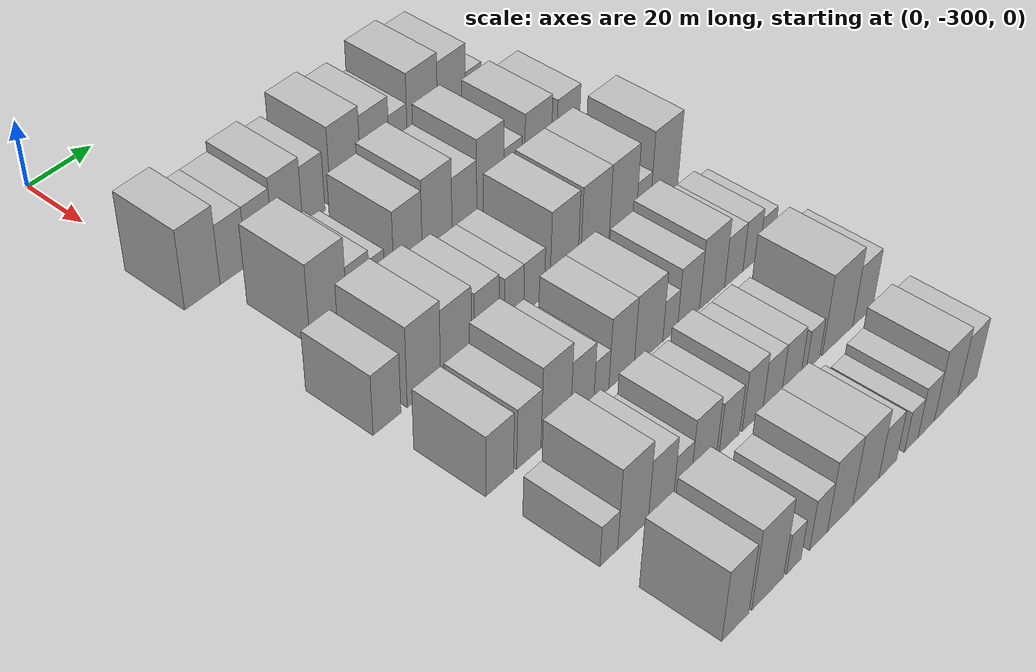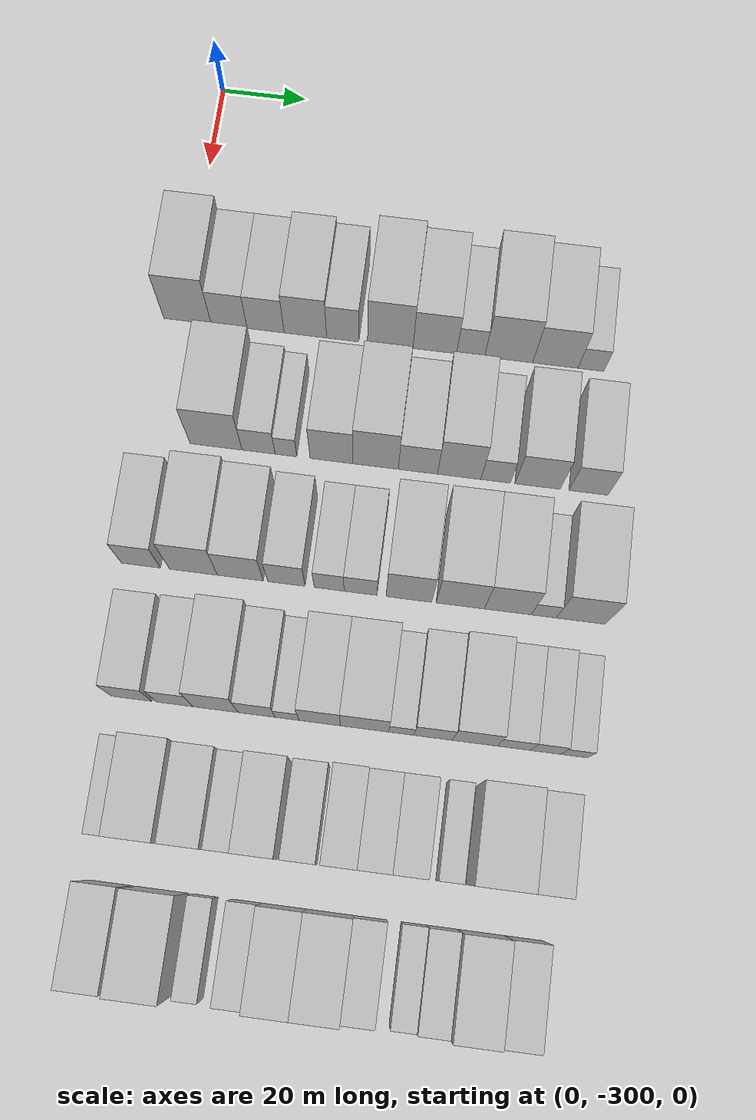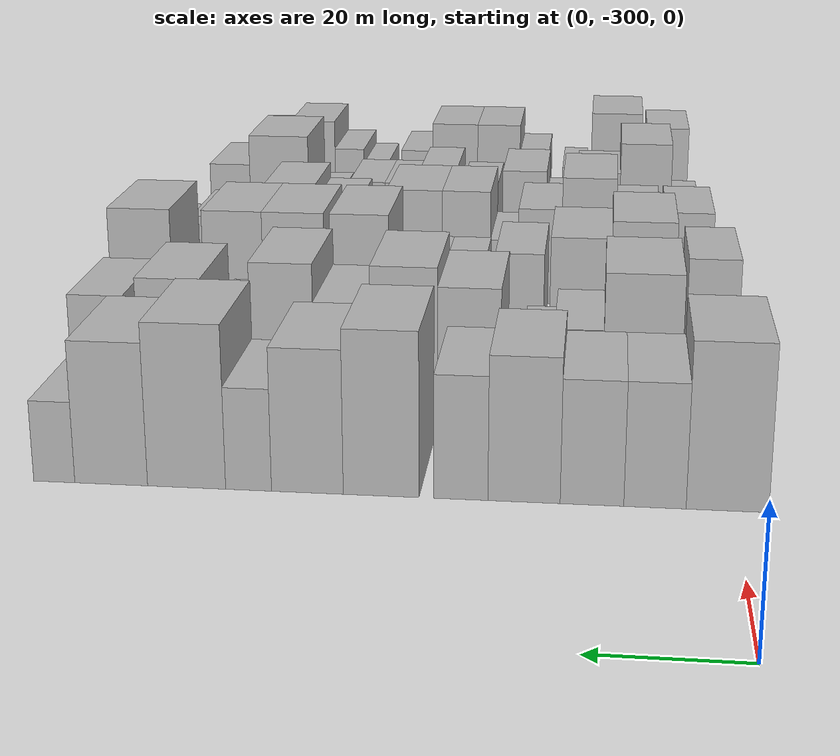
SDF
<sdf version="1.6">
 <world name="default">
  <model name="building_23">
   <static>1</static>
   <pose>50.0000 -298.9540 0 0.000000 0.000000 0.000000</pose>
   <link name="link">
    <pose>0 0 12.00 0 0 0</pose>
    <collision name="collision"><geometry><box><size>20.0000 10.9921 24.0000</size></box></geometry></collision>
    <visual name="visual">
     <cast_shadows>0</cast_shadows>
     <geometry><box><size>20.0000 10.9921 24.0000</size></box></geometry>
     <material>
      <script>
       <uri>model://HANNAS_wall/materials/scripts</uri>
       <uri>model://HANNAS_wall/materials/textures</uri>
       <name>vrc/HANNAS_wall</name>
      </script>
     </material>
    </visual>
   </link>
  </model>
  <model name="building_24">
   <static>1</static>
   <pose>50.0000 -289.2894 0 0.000000 0.000000 0.000000</pose>
   <link name="link">
    <pose>0 0 9.00 0 0 0</pose>
    <collision name="collision"><geometry><box><size>20.0000 8.3369 18.0000</size></box></geometry></collision>
    <visual name="visual">
     <cast_shadows>0</cast_shadows>
     <geometry><box><size>20.0000 8.3369 18.0000</size></box></geometry>
     <material>
      <script>
       <uri>model://HANNAS_wall/materials/scripts</uri>
       <uri>model://HANNAS_wall/materials/textures</uri>
       <name>vrc/HANNAS_wall</name>
      </script>
     </material>
    </visual>
   </link>
  </model>
  <model name="building_25">
   <static>1</static>
   <pose>50.0000 -280.8331 0 0.000000 0.000000 0.000000</pose>
   <link name="link">
    <pose>0 0 9.00 0 0 0</pose>
    <collision name="collision"><geometry><box><size>20.0000 8.5759 18.0000</size></box></geometry></collision>
    <visual name="visual">
     <cast_shadows>0</cast_shadows>
     <geometry><box><size>20.0000 8.5759 18.0000</size></box></geometry>
     <material>
      <script>
       <uri>model://HANNAS_wall/materials/scripts</uri>
       <uri>model://HANNAS_wall/materials/textures</uri>
       <name>vrc/HANNAS_wall</name>
      </script>
     </material>
    </visual>
   </link>
  </model>
  <model name="building_26">
   <static>1</static>
   <pose>50.0000 -271.6432 0 0.000000 0.000000 0.000000</pose>
   <link name="link">
    <pose>0 0 10.50 0 0 0</pose>
    <collision name="collision"><geometry><box><size>20.0000 9.8039 21.0000</size></box></geometry></collision>
    <visual name="visual">
     <cast_shadows>0</cast_shadows>
     <geometry><box><size>20.0000 9.8039 21.0000</size></box></geometry>
     <material>
      <script>
       <uri>model://HANNAS_wall/materials/scripts</uri>
       <uri>model://HANNAS_wall/materials/textures</uri>
       <name>vrc/HANNAS_wall</name>
      </script>
     </material>
    </visual>
   </link>
  </model>
  <model name="building_27">
   <static>1</static>
   <pose>50.0000 -263.0269 0 0.000000 0.000000 0.000000</pose>
   <link name="link">
    <pose>0 0 9.00 0 0 0</pose>
    <collision name="collision"><geometry><box><size>20.0000 7.4286 18.0000</size></box></geometry></collision>
    <visual name="visual">
     <cast_shadows>0</cast_shadows>
     <geometry><box><size>20.0000 7.4286 18.0000</size></box></geometry>
     <material>
      <script>
       <uri>model://HANNAS_wall/materials/scripts</uri>
       <uri>model://HANNAS_wall/materials/textures</uri>
       <name>vrc/HANNAS_wall</name>
      </script>
     </material>
    </visual>
   </link>
  </model>
  <model name="building_28">
   <static>1</static>
   <pose>50.0000 -252.0809 0 0.000000 0.000000 0.000000</pose>
   <link name="link">
    <pose>0 0 12.00 0 0 0</pose>
    <collision name="collision"><geometry><box><size>20.0000 10.4635 24.0000</size></box></geometry></collision>
    <visual name="visual">
     <cast_shadows>0</cast_shadows>
     <geometry><box><size>20.0000 10.4635 24.0000</size></box></geometry>
     <material>
      <script>
       <uri>model://HANNAS_wall/materials/scripts</uri>
       <uri>model://HANNAS_wall/materials/textures</uri>
       <name>vrc/HANNAS_wall</name>
      </script>
     </material>
    </visual>
   </link>
  </model>
  <model name="building_29">
   <static>1</static>
   <pose>50.0000 -241.8548 0 0.000000 0.000000 0.000000</pose>
   <link name="link">
    <pose>0 0 10.50 0 0 0</pose>
    <collision name="collision"><geometry><box><size>20.0000 9.9885 21.0000</size></box></geometry></collision>
    <visual name="visual">
     <cast_shadows>0</cast_shadows>
     <geometry><box><size>20.0000 9.9885 21.0000</size></box></geometry>
     <material>
      <script>
       <uri>model://HANNAS_wall/materials/scripts</uri>
       <uri>model://HANNAS_wall/materials/textures</uri>
       <name>vrc/HANNAS_wall</name>
      </script>
     </material>
    </visual>
   </link>
  </model>
  <model name="building_30">
   <static>1</static>
   <pose>50.0000 -233.6473 0 0.000000 0.000000 0.000000</pose>
   <link name="link">
    <pose>0 0 7.50 0 0 0</pose>
    <collision name="collision"><geometry><box><size>20.0000 6.4266 15.0000</size></box></geometry></collision>
    <visual name="visual">
     <cast_shadows>0</cast_shadows>
     <geometry><box><size>20.0000 6.4266 15.0000</size></box></geometry>
     <material>
      <script>
       <uri>model://HANNAS_wall/materials/scripts</uri>
       <uri>model://HANNAS_wall/materials/textures</uri>
       <name>vrc/HANNAS_wall</name>
      </script>
     </material>
    </visual>
   </link>
  </model>
  <model name="building_31">
   <static>1</static>
   <pose>50.0000 -224.9230 0 0.000000 0.000000 0.000000</pose>
   <link name="link">
    <pose>0 0 12.00 0 0 0</pose>
    <collision name="collision"><geometry><box><size>20.0000 11.0220 24.0000</size></box></geometry></collision>
    <visual name="visual">
     <cast_shadows>0</cast_shadows>
     <geometry><box><size>20.0000 11.0220 24.0000</size></box></geometry>
     <material>
      <script>
       <uri>model://HANNAS_wall/materials/scripts</uri>
       <uri>model://HANNAS_wall/materials/textures</uri>
       <name>vrc/HANNAS_wall</name>
      </script>
     </material>
    </visual>
   </link>
  </model>
  <model name="building_32">
   <static>1</static>
   <pose>50.0000 -214.2263 0 0.000000 0.000000 0.000000</pose>
   <link name="link">
    <pose>0 0 10.50 0 0 0</pose>
    <collision name="collision"><geometry><box><size>20.0000 10.3713 21.0000</size></box></geometry></collision>
    <visual name="visual">
     <cast_shadows>0</cast_shadows>
     <geometry><box><size>20.0000 10.3713 21.0000</size></box></geometry>
     <material>
      <script>
       <uri>model://HANNAS_wall/materials/scripts</uri>
       <uri>model://HANNAS_wall/materials/textures</uri>
       <name>vrc/HANNAS_wall</name>
      </script>
     </material>
    </visual>
   </link>
  </model>
  <model name="building_33">
   <static>1</static>
   <pose>50.0000 -206.0952 0 0.000000 0.000000 0.000000</pose>
   <link name="link">
    <pose>0 0 6.00 0 0 0</pose>
    <collision name="collision"><geometry><box><size>20.0000 5.8910 12.0000</size></box></geometry></collision>
    <visual name="visual">
     <cast_shadows>0</cast_shadows>
     <geometry><box><size>20.0000 5.8910 12.0000</size></box></geometry>
     <material>
      <script>
       <uri>model://HANNAS_wall/materials/scripts</uri>
       <uri>model://HANNAS_wall/materials/textures</uri>
       <name>vrc/HANNAS_wall</name>
      </script>
     </material>
    </visual>
   </link>
  </model>
  <model name="building_136">
   <static>1</static>
   <pose>79.0000 -287.8051 0 0.000000 0.000000 0.000000</pose>
   <link name="link">
    <pose>0 0 12.00 0 0 0</pose>
    <collision name="collision"><geometry><box><size>20.0000 11.7694 24.0000</size></box></geometry></collision>
    <visual name="visual">
     <cast_shadows>0</cast_shadows>
     <geometry><box><size>20.0000 11.7694 24.0000</size></box></geometry>
     <material>
      <script>
       <uri>model://HANNAS_wall/materials/scripts</uri>
       <uri>model://HANNAS_wall/materials/textures</uri>
       <name>vrc/HANNAS_wall</name>
      </script>
     </material>
    </visual>
   </link>
  </model>
  <model name="building_137">
   <static>1</static>
   <pose>79.0000 -278.1795 0 0.000000 0.000000 0.000000</pose>
   <link name="link">
    <pose>0 0 7.50 0 0 0</pose>
    <collision name="collision"><geometry><box><size>20.0000 7.4819 15.0000</size></box></geometry></collision>
    <visual name="visual">
     <cast_shadows>0</cast_shadows>
     <geometry><box><size>20.0000 7.4819 15.0000</size></box></geometry>
     <material>
      <script>
       <uri>model://HANNAS_wall/materials/scripts</uri>
       <uri>model://HANNAS_wall/materials/textures</uri>
       <name>vrc/HANNAS_wall</name>
      </script>
     </material>
    </visual>
   </link>
  </model>
  <model name="building_138">
   <static>1</static>
   <pose>79.0000 -271.9915 0 0.000000 0.000000 0.000000</pose>
   <link name="link">
    <pose>0 0 6.00 0 0 0</pose>
    <collision name="collision"><geometry><box><size>20.0000 4.8941 12.0000</size></box></geometry></collision>
    <visual name="visual">
     <cast_shadows>0</cast_shadows>
     <geometry><box><size>20.0000 4.8941 12.0000</size></box></geometry>
     <material>
      <script>
       <uri>model://HANNAS_wall/materials/scripts</uri>
       <uri>model://HANNAS_wall/materials/textures</uri>
       <name>vrc/HANNAS_wall</name>
      </script>
     </material>
    </visual>
   </link>
  </model>
  <model name="building_139">
   <static>1</static>
   <pose>79.0000 -261.7283 0 0.000000 0.000000 0.000000</pose>
   <link name="link">
    <pose>0 0 10.50 0 0 0</pose>
    <collision name="collision"><geometry><box><size>20.0000 9.6323 21.0000</size></box></geometry></collision>
    <visual name="visual">
     <cast_shadows>0</cast_shadows>
     <geometry><box><size>20.0000 9.6323 21.0000</size></box></geometry>
     <material>
      <script>
       <uri>model://HANNAS_wall/materials/scripts</uri>
       <uri>model://HANNAS_wall/materials/textures</uri>
       <name>vrc/HANNAS_wall</name>
      </script>
     </material>
    </visual>
   </link>
  </model>
  <model name="building_140">
   <static>1</static>
   <pose>79.0000 -251.7952 0 0.000000 0.000000 0.000000</pose>
   <link name="link">
    <pose>0 0 12.00 0 0 0</pose>
    <collision name="collision"><geometry><box><size>20.0000 10.2338 24.0000</size></box></geometry></collision>
    <visual name="visual">
     <cast_shadows>0</cast_shadows>
     <geometry><box><size>20.0000 10.2338 24.0000</size></box></geometry>
     <material>
      <script>
       <uri>model://HANNAS_wall/materials/scripts</uri>
       <uri>model://HANNAS_wall/materials/textures</uri>
       <name>vrc/HANNAS_wall</name>
      </script>
     </material>
    </visual>
   </link>
  </model>
  <model name="building_141">
   <static>1</static>
   <pose>79.0000 -242.3084 0 0.000000 0.000000 0.000000</pose>
   <link name="link">
    <pose>0 0 9.00 0 0 0</pose>
    <collision name="collision"><geometry><box><size>20.0000 8.7400 18.0000</size></box></geometry></collision>
    <visual name="visual">
     <cast_shadows>0</cast_shadows>
     <geometry><box><size>20.0000 8.7400 18.0000</size></box></geometry>
     <material>
      <script>
       <uri>model://HANNAS_wall/materials/scripts</uri>
       <uri>model://HANNAS_wall/materials/textures</uri>
       <name>vrc/HANNAS_wall</name>
      </script>
     </material>
    </visual>
   </link>
  </model>
  <model name="building_142">
   <static>1</static>
   <pose>79.0000 -233.0728 0 0.000000 0.000000 0.000000</pose>
   <link name="link">
    <pose>0 0 12.00 0 0 0</pose>
    <collision name="collision"><geometry><box><size>20.0000 9.7310 24.0000</size></box></geometry></collision>
    <visual name="visual">
     <cast_shadows>0</cast_shadows>
     <geometry><box><size>20.0000 9.7310 24.0000</size></box></geometry>
     <material>
      <script>
       <uri>model://HANNAS_wall/materials/scripts</uri>
       <uri>model://HANNAS_wall/materials/textures</uri>
       <name>vrc/HANNAS_wall</name>
      </script>
     </material>
    </visual>
   </link>
  </model>
  <model name="building_143">
   <static>1</static>
   <pose>79.0000 -224.8968 0 0.000000 0.000000 0.000000</pose>
   <link name="link">
    <pose>0 0 7.50 0 0 0</pose>
    <collision name="collision"><geometry><box><size>20.0000 6.6211 15.0000</size></box></geometry></collision>
    <visual name="visual">
     <cast_shadows>0</cast_shadows>
     <geometry><box><size>20.0000 6.6211 15.0000</size></box></geometry>
     <material>
      <script>
       <uri>model://HANNAS_wall/materials/scripts</uri>
       <uri>model://HANNAS_wall/materials/textures</uri>
       <name>vrc/HANNAS_wall</name>
      </script>
     </material>
    </visual>
   </link>
  </model>
  <model name="building_144">
   <static>1</static>
   <pose>79.0000 -215.5417 0 0.000000 0.000000 0.000000</pose>
   <link name="link">
    <pose>0 0 10.50 0 0 0</pose>
    <collision name="collision"><geometry><box><size>20.0000 10.0890 21.0000</size></box></geometry></collision>
    <visual name="visual">
     <cast_shadows>0</cast_shadows>
     <geometry><box><size>20.0000 10.0890 21.0000</size></box></geometry>
     <material>
      <script>
       <uri>model://HANNAS_wall/materials/scripts</uri>
       <uri>model://HANNAS_wall/materials/textures</uri>
       <name>vrc/HANNAS_wall</name>
      </script>
     </material>
    </visual>
   </link>
  </model>
  <model name="building_145">
   <static>1</static>
   <pose>79.0000 -204.1486 0 0.000000 0.000000 0.000000</pose>
   <link name="link">
    <pose>0 0 9.00 0 0 0</pose>
    <collision name="collision"><geometry><box><size>20.0000 8.6974 18.0000</size></box></geometry></collision>
    <visual name="visual">
     <cast_shadows>0</cast_shadows>
     <geometry><box><size>20.0000 8.6974 18.0000</size></box></geometry>
     <material>
      <script>
       <uri>model://HANNAS_wall/materials/scripts</uri>
       <uri>model://HANNAS_wall/materials/textures</uri>
       <name>vrc/HANNAS_wall</name>
      </script>
     </material>
    </visual>
   </link>
  </model>
  <model name="building_246">
   <static>1</static>
   <pose>108.0000 -299.9134 0 0.000000 0.000000 0.000000</pose>
   <link name="link">
    <pose>0 0 9.00 0 0 0</pose>
    <collision name="collision"><geometry><box><size>20.0000 8.6433 18.0000</size></box></geometry></collision>
    <visual name="visual">
     <cast_shadows>0</cast_shadows>
     <geometry><box><size>20.0000 8.6433 18.0000</size></box></geometry>
     <material>
      <script>
       <uri>model://HANNAS_wall/materials/scripts</uri>
       <uri>model://HANNAS_wall/materials/textures</uri>
       <name>vrc/HANNAS_wall</name>
      </script>
     </material>
    </visual>
   </link>
  </model>
  <model name="building_247">
   <static>1</static>
   <pose>108.0000 -288.2678 0 0.000000 0.000000 0.000000</pose>
   <link name="link">
    <pose>0 0 12.00 0 0 0</pose>
    <collision name="collision"><geometry><box><size>20.0000 10.6478 24.0000</size></box></geometry></collision>
    <visual name="visual">
     <cast_shadows>0</cast_shadows>
     <geometry><box><size>20.0000 10.6478 24.0000</size></box></geometry>
     <material>
      <script>
       <uri>model://HANNAS_wall/materials/scripts</uri>
       <uri>model://HANNAS_wall/materials/textures</uri>
       <name>vrc/HANNAS_wall</name>
      </script>
     </material>
    </visual>
   </link>
  </model>
  <model name="building_248">
   <static>1</static>
   <pose>108.0000 -277.9023 0 0.000000 0.000000 0.000000</pose>
   <link name="link">
    <pose>0 0 10.50 0 0 0</pose>
    <collision name="collision"><geometry><box><size>20.0000 10.0833 21.0000</size></box></geometry></collision>
    <visual name="visual">
     <cast_shadows>0</cast_shadows>
     <geometry><box><size>20.0000 10.0833 21.0000</size></box></geometry>
     <material>
      <script>
       <uri>model://HANNAS_wall/materials/scripts</uri>
       <uri>model://HANNAS_wall/materials/textures</uri>
       <name>vrc/HANNAS_wall</name>
      </script>
     </material>
    </visual>
   </link>
  </model>
  <model name="building_249">
   <static>1</static>
   <pose>108.0000 -267.7520 0 0.000000 0.000000 0.000000</pose>
   <link name="link">
    <pose>0 0 9.00 0 0 0</pose>
    <collision name="collision"><geometry><box><size>20.0000 8.2174 18.0000</size></box></geometry></collision>
    <visual name="visual">
     <cast_shadows>0</cast_shadows>
     <geometry><box><size>20.0000 8.2174 18.0000</size></box></geometry>
     <material>
      <script>
       <uri>model://HANNAS_wall/materials/scripts</uri>
       <uri>model://HANNAS_wall/materials/textures</uri>
       <name>vrc/HANNAS_wall</name>
      </script>
     </material>
    </visual>
   </link>
  </model>
  <model name="building_250">
   <static>1</static>
   <pose>108.0000 -258.3601 0 0.000000 0.000000 0.000000</pose>
   <link name="link">
    <pose>0 0 7.50 0 0 0</pose>
    <collision name="collision"><geometry><box><size>20.0000 6.5665 15.0000</size></box></geometry></collision>
    <visual name="visual">
     <cast_shadows>0</cast_shadows>
     <geometry><box><size>20.0000 6.5665 15.0000</size></box></geometry>
     <material>
      <script>
       <uri>model://HANNAS_wall/materials/scripts</uri>
       <uri>model://HANNAS_wall/materials/textures</uri>
       <name>vrc/HANNAS_wall</name>
      </script>
     </material>
    </visual>
   </link>
  </model>
  <model name="building_251">
   <static>1</static>
   <pose>108.0000 -251.4636 0 0.000000 0.000000 0.000000</pose>
   <link name="link">
    <pose>0 0 7.50 0 0 0</pose>
    <collision name="collision"><geometry><box><size>20.0000 7.2264 15.0000</size></box></geometry></collision>
    <visual name="visual">
     <cast_shadows>0</cast_shadows>
     <geometry><box><size>20.0000 7.2264 15.0000</size></box></geometry>
     <material>
      <script>
       <uri>model://HANNAS_wall/materials/scripts</uri>
       <uri>model://HANNAS_wall/materials/textures</uri>
       <name>vrc/HANNAS_wall</name>
      </script>
     </material>
    </visual>
   </link>
  </model>
  <model name="building_252">
   <static>1</static>
   <pose>108.0000 -240.8677 0 0.000000 0.000000 0.000000</pose>
   <link name="link">
    <pose>0 0 12.00 0 0 0</pose>
    <collision name="collision"><geometry><box><size>20.0000 9.9655 24.0000</size></box></geometry></collision>
    <visual name="visual">
     <cast_shadows>0</cast_shadows>
     <geometry><box><size>20.0000 9.9655 24.0000</size></box></geometry>
     <material>
      <script>
       <uri>model://HANNAS_wall/materials/scripts</uri>
       <uri>model://HANNAS_wall/materials/textures</uri>
       <name>vrc/HANNAS_wall</name>
      </script>
     </material>
    </visual>
   </link>
  </model>
  <model name="building_253">
   <static>1</static>
   <pose>108.0000 -229.6388 0 0.000000 0.000000 0.000000</pose>
   <link name="link">
    <pose>0 0 12.00 0 0 0</pose>
    <collision name="collision"><geometry><box><size>20.0000 10.4922 24.0000</size></box></geometry></collision>
    <visual name="visual">
     <cast_shadows>0</cast_shadows>
     <geometry><box><size>20.0000 10.4922 24.0000</size></box></geometry>
     <material>
      <script>
       <uri>model://HANNAS_wall/materials/scripts</uri>
       <uri>model://HANNAS_wall/materials/textures</uri>
       <name>vrc/HANNAS_wall</name>
      </script>
     </material>
    </visual>
   </link>
  </model>
  <model name="building_254">
   <static>1</static>
   <pose>108.0000 -219.2633 0 0.000000 0.000000 0.000000</pose>
   <link name="link">
    <pose>0 0 12.00 0 0 0</pose>
    <collision name="collision"><geometry><box><size>20.0000 10.2589 24.0000</size></box></geometry></collision>
    <visual name="visual">
     <cast_shadows>0</cast_shadows>
     <geometry><box><size>20.0000 10.2589 24.0000</size></box></geometry>
     <material>
      <script>
       <uri>model://HANNAS_wall/materials/scripts</uri>
       <uri>model://HANNAS_wall/materials/textures</uri>
       <name>vrc/HANNAS_wall</name>
      </script>
     </material>
    </visual>
   </link>
  </model>
  <model name="building_255">
   <static>1</static>
   <pose>108.0000 -211.4059 0 0.000000 0.000000 0.000000</pose>
   <link name="link">
    <pose>0 0 6.00 0 0 0</pose>
    <collision name="collision"><geometry><box><size>20.0000 5.4559 12.0000</size></box></geometry></collision>
    <visual name="visual">
     <cast_shadows>0</cast_shadows>
     <geometry><box><size>20.0000 5.4559 12.0000</size></box></geometry>
     <material>
      <script>
       <uri>model://HANNAS_wall/materials/scripts</uri>
       <uri>model://HANNAS_wall/materials/textures</uri>
       <name>vrc/HANNAS_wall</name>
      </script>
     </material>
    </visual>
   </link>
  </model>
  <model name="building_256">
   <static>1</static>
   <pose>108.0000 -203.3059 0 0.000000 0.000000 0.000000</pose>
   <link name="link">
    <pose>0 0 12.00 0 0 0</pose>
    <collision name="collision"><geometry><box><size>20.0000 10.7442 24.0000</size></box></geometry></collision>
    <visual name="visual">
     <cast_shadows>0</cast_shadows>
     <geometry><box><size>20.0000 10.7442 24.0000</size></box></geometry>
     <material>
      <script>
       <uri>model://HANNAS_wall/materials/scripts</uri>
       <uri>model://HANNAS_wall/materials/textures</uri>
       <name>vrc/HANNAS_wall</name>
      </script>
     </material>
    </visual>
   </link>
  </model>
  <model name="building_356">
   <static>1</static>
   <pose>137.0000 -296.9998 0 0.000000 0.000000 0.000000</pose>
   <link name="link">
    <pose>0 0 9.00 0 0 0</pose>
    <collision name="collision"><geometry><box><size>20.0000 8.7919 18.0000</size></box></geometry></collision>
    <visual name="visual">
     <cast_shadows>0</cast_shadows>
     <geometry><box><size>20.0000 8.7919 18.0000</size></box></geometry>
     <material>
      <script>
       <uri>model://HANNAS_wall/materials/scripts</uri>
       <uri>model://HANNAS_wall/materials/textures</uri>
       <name>vrc/HANNAS_wall</name>
      </script>
     </material>
    </visual>
   </link>
  </model>
  <model name="building_357">
   <static>1</static>
   <pose>137.0000 -287.6538 0 0.000000 0.000000 0.000000</pose>
   <link name="link">
    <pose>0 0 9.00 0 0 0</pose>
    <collision name="collision"><geometry><box><size>20.0000 7.9002 18.0000</size></box></geometry></collision>
    <visual name="visual">
     <cast_shadows>0</cast_shadows>
     <geometry><box><size>20.0000 7.9002 18.0000</size></box></geometry>
     <material>
      <script>
       <uri>model://HANNAS_wall/materials/scripts</uri>
       <uri>model://HANNAS_wall/materials/textures</uri>
       <name>vrc/HANNAS_wall</name>
      </script>
     </material>
    </visual>
   </link>
  </model>
  <model name="building_358">
   <static>1</static>
   <pose>137.0000 -278.8175 0 0.000000 0.000000 0.000000</pose>
   <link name="link">
    <pose>0 0 12.00 0 0 0</pose>
    <collision name="collision"><geometry><box><size>20.0000 9.7725 24.0000</size></box></geometry></collision>
    <visual name="visual">
     <cast_shadows>0</cast_shadows>
     <geometry><box><size>20.0000 9.7725 24.0000</size></box></geometry>
     <material>
      <script>
       <uri>model://HANNAS_wall/materials/scripts</uri>
       <uri>model://HANNAS_wall/materials/textures</uri>
       <name>vrc/HANNAS_wall</name>
      </script>
     </material>
    </visual>
   </link>
  </model>
  <model name="building_359">
   <static>1</static>
   <pose>137.0000 -269.9731 0 0.000000 0.000000 0.000000</pose>
   <link name="link">
    <pose>0 0 9.00 0 0 0</pose>
    <collision name="collision"><geometry><box><size>20.0000 7.9161 18.0000</size></box></geometry></collision>
    <visual name="visual">
     <cast_shadows>0</cast_shadows>
     <geometry><box><size>20.0000 7.9161 18.0000</size></box></geometry>
     <material>
      <script>
       <uri>model://HANNAS_wall/materials/scripts</uri>
       <uri>model://HANNAS_wall/materials/textures</uri>
       <name>vrc/HANNAS_wall</name>
      </script>
     </material>
    </visual>
   </link>
  </model>
  <model name="building_360">
   <static>1</static>
   <pose>137.0000 -263.4494 0 0.000000 0.000000 0.000000</pose>
   <link name="link">
    <pose>0 0 6.00 0 0 0</pose>
    <collision name="collision"><geometry><box><size>20.0000 5.1313 12.0000</size></box></geometry></collision>
    <visual name="visual">
     <cast_shadows>0</cast_shadows>
     <geometry><box><size>20.0000 5.1313 12.0000</size></box></geometry>
     <material>
      <script>
       <uri>model://HANNAS_wall/materials/scripts</uri>
       <uri>model://HANNAS_wall/materials/textures</uri>
       <name>vrc/HANNAS_wall</name>
      </script>
     </material>
    </visual>
   </link>
  </model>
  <model name="building_361">
   <static>1</static>
   <pose>137.0000 -256.4509 0 0.000000 0.000000 0.000000</pose>
   <link name="link">
    <pose>0 0 10.50 0 0 0</pose>
    <collision name="collision"><geometry><box><size>20.0000 8.8657 21.0000</size></box></geometry></collision>
    <visual name="visual">
     <cast_shadows>0</cast_shadows>
     <geometry><box><size>20.0000 8.8657 21.0000</size></box></geometry>
     <material>
      <script>
       <uri>model://HANNAS_wall/materials/scripts</uri>
       <uri>model://HANNAS_wall/materials/textures</uri>
       <name>vrc/HANNAS_wall</name>
      </script>
     </material>
    </visual>
   </link>
  </model>
  <model name="building_362">
   <static>1</static>
   <pose>137.0000 -246.8710 0 0.000000 0.000000 0.000000</pose>
   <link name="link">
    <pose>0 0 10.50 0 0 0</pose>
    <collision name="collision"><geometry><box><size>20.0000 10.2941 21.0000</size></box></geometry></collision>
    <visual name="visual">
     <cast_shadows>0</cast_shadows>
     <geometry><box><size>20.0000 10.2941 21.0000</size></box></geometry>
     <material>
      <script>
       <uri>model://HANNAS_wall/materials/scripts</uri>
       <uri>model://HANNAS_wall/materials/textures</uri>
       <name>vrc/HANNAS_wall</name>
      </script>
     </material>
    </visual>
   </link>
  </model>
  <model name="building_363">
   <static>1</static>
   <pose>137.0000 -239.0305 0 0.000000 0.000000 0.000000</pose>
   <link name="link">
    <pose>0 0 6.00 0 0 0</pose>
    <collision name="collision"><geometry><box><size>20.0000 5.3869 12.0000</size></box></geometry></collision>
    <visual name="visual">
     <cast_shadows>0</cast_shadows>
     <geometry><box><size>20.0000 5.3869 12.0000</size></box></geometry>
     <material>
      <script>
       <uri>model://HANNAS_wall/materials/scripts</uri>
       <uri>model://HANNAS_wall/materials/textures</uri>
       <name>vrc/HANNAS_wall</name>
      </script>
     </material>
    </visual>
   </link>
  </model>
  <model name="building_364">
   <static>1</static>
   <pose>137.0000 -232.2501 0 0.000000 0.000000 0.000000</pose>
   <link name="link">
    <pose>0 0 9.00 0 0 0</pose>
    <collision name="collision"><geometry><box><size>20.0000 8.1737 18.0000</size></box></geometry></collision>
    <visual name="visual">
     <cast_shadows>0</cast_shadows>
     <geometry><box><size>20.0000 8.1737 18.0000</size></box></geometry>
     <material>
      <script>
       <uri>model://HANNAS_wall/materials/scripts</uri>
       <uri>model://HANNAS_wall/materials/textures</uri>
       <name>vrc/HANNAS_wall</name>
      </script>
     </material>
    </visual>
   </link>
  </model>
  <model name="building_365">
   <static>1</static>
   <pose>137.0000 -223.3957 0 0.000000 0.000000 0.000000</pose>
   <link name="link">
    <pose>0 0 10.50 0 0 0</pose>
    <collision name="collision"><geometry><box><size>20.0000 9.5351 21.0000</size></box></geometry></collision>
    <visual name="visual">
     <cast_shadows>0</cast_shadows>
     <geometry><box><size>20.0000 9.5351 21.0000</size></box></geometry>
     <material>
      <script>
       <uri>model://HANNAS_wall/materials/scripts</uri>
       <uri>model://HANNAS_wall/materials/textures</uri>
       <name>vrc/HANNAS_wall</name>
      </script>
     </material>
    </visual>
   </link>
  </model>
  <model name="building_366">
   <static>1</static>
   <pose>137.0000 -215.0769 0 0.000000 0.000000 0.000000</pose>
   <link name="link">
    <pose>0 0 7.50 0 0 0</pose>
    <collision name="collision"><geometry><box><size>20.0000 7.1026 15.0000</size></box></geometry></collision>
    <visual name="visual">
     <cast_shadows>0</cast_shadows>
     <geometry><box><size>20.0000 7.1026 15.0000</size></box></geometry>
     <material>
      <script>
       <uri>model://HANNAS_wall/materials/scripts</uri>
       <uri>model://HANNAS_wall/materials/textures</uri>
       <name>vrc/HANNAS_wall</name>
      </script>
     </material>
    </visual>
   </link>
  </model>
  <model name="building_367">
   <static>1</static>
   <pose>137.0000 -208.3216 0 0.000000 0.000000 0.000000</pose>
   <link name="link">
    <pose>0 0 7.50 0 0 0</pose>
    <collision name="collision"><geometry><box><size>20.0000 6.4079 15.0000</size></box></geometry></collision>
    <visual name="visual">
     <cast_shadows>0</cast_shadows>
     <geometry><box><size>20.0000 6.4079 15.0000</size></box></geometry>
     <material>
      <script>
       <uri>model://HANNAS_wall/materials/scripts</uri>
       <uri>model://HANNAS_wall/materials/textures</uri>
       <name>vrc/HANNAS_wall</name>
      </script>
     </material>
    </visual>
   </link>
  </model>
  <model name="building_368">
   <static>1</static>
   <pose>137.0000 -202.2452 0 0.000000 0.000000 0.000000</pose>
   <link name="link">
    <pose>0 0 6.00 0 0 0</pose>
    <collision name="collision"><geometry><box><size>20.0000 5.7450 12.0000</size></box></geometry></collision>
    <visual name="visual">
     <cast_shadows>0</cast_shadows>
     <geometry><box><size>20.0000 5.7450 12.0000</size></box></geometry>
     <material>
      <script>
       <uri>model://HANNAS_wall/materials/scripts</uri>
       <uri>model://HANNAS_wall/materials/textures</uri>
       <name>vrc/HANNAS_wall</name>
      </script>
     </material>
    </visual>
   </link>
  </model>
  <model name="building_474">
   <static>1</static>
   <pose>166.0000 -297.3881 0 0.000000 0.000000 0.000000</pose>
   <link name="link">
    <pose>0 0 6.00 0 0 0</pose>
    <collision name="collision"><geometry><box><size>20.0000 5.6850 12.0000</size></box></geometry></collision>
    <visual name="visual">
     <cast_shadows>0</cast_shadows>
     <geometry><box><size>20.0000 5.6850 12.0000</size></box></geometry>
     <material>
      <script>
       <uri>model://HANNAS_wall/materials/scripts</uri>
       <uri>model://HANNAS_wall/materials/textures</uri>
       <name>vrc/HANNAS_wall</name>
      </script>
     </material>
    </visual>
   </link>
  </model>
  <model name="building_475">
   <static>1</static>
   <pose>166.0000 -289.5441 0 0.000000 0.000000 0.000000</pose>
   <link name="link">
    <pose>0 0 12.00 0 0 0</pose>
    <collision name="collision"><geometry><box><size>20.0000 10.0030 24.0000</size></box></geometry></collision>
    <visual name="visual">
     <cast_shadows>0</cast_shadows>
     <geometry><box><size>20.0000 10.0030 24.0000</size></box></geometry>
     <material>
      <script>
       <uri>model://HANNAS_wall/materials/scripts</uri>
       <uri>model://HANNAS_wall/materials/textures</uri>
       <name>vrc/HANNAS_wall</name>
      </script>
     </material>
    </visual>
   </link>
  </model>
  <model name="building_476">
   <static>1</static>
   <pose>166.0000 -280.2774 0 0.000000 0.000000 0.000000</pose>
   <link name="link">
    <pose>0 0 9.00 0 0 0</pose>
    <collision name="collision"><geometry><box><size>20.0000 8.5303 18.0000</size></box></geometry></collision>
    <visual name="visual">
     <cast_shadows>0</cast_shadows>
     <geometry><box><size>20.0000 8.5303 18.0000</size></box></geometry>
     <material>
      <script>
       <uri>model://HANNAS_wall/materials/scripts</uri>
       <uri>model://HANNAS_wall/materials/textures</uri>
       <name>vrc/HANNAS_wall</name>
      </script>
     </material>
    </visual>
   </link>
  </model>
  <model name="building_477">
   <static>1</static>
   <pose>166.0000 -273.0329 0 0.000000 0.000000 0.000000</pose>
   <link name="link">
    <pose>0 0 6.00 0 0 0</pose>
    <collision name="collision"><geometry><box><size>20.0000 5.9587 12.0000</size></box></geometry></collision>
    <visual name="visual">
     <cast_shadows>0</cast_shadows>
     <geometry><box><size>20.0000 5.9587 12.0000</size></box></geometry>
     <material>
      <script>
       <uri>model://HANNAS_wall/materials/scripts</uri>
       <uri>model://HANNAS_wall/materials/textures</uri>
       <name>vrc/HANNAS_wall</name>
      </script>
     </material>
    </visual>
   </link>
  </model>
  <model name="building_478">
   <static>1</static>
   <pose>166.0000 -265.6677 0 0.000000 0.000000 0.000000</pose>
   <link name="link">
    <pose>0 0 9.00 0 0 0</pose>
    <collision name="collision"><geometry><box><size>20.0000 8.7718 18.0000</size></box></geometry></collision>
    <visual name="visual">
     <cast_shadows>0</cast_shadows>
     <geometry><box><size>20.0000 8.7718 18.0000</size></box></geometry>
     <material>
      <script>
       <uri>model://HANNAS_wall/materials/scripts</uri>
       <uri>model://HANNAS_wall/materials/textures</uri>
       <name>vrc/HANNAS_wall</name>
      </script>
     </material>
    </visual>
   </link>
  </model>
  <model name="building_479">
   <static>1</static>
   <pose>166.0000 -256.6809 0 0.000000 0.000000 0.000000</pose>
   <link name="link">
    <pose>0 0 7.50 0 0 0</pose>
    <collision name="collision"><geometry><box><size>20.0000 7.2018 15.0000</size></box></geometry></collision>
    <visual name="visual">
     <cast_shadows>0</cast_shadows>
     <geometry><box><size>20.0000 7.2018 15.0000</size></box></geometry>
     <material>
      <script>
       <uri>model://HANNAS_wall/materials/scripts</uri>
       <uri>model://HANNAS_wall/materials/textures</uri>
       <name>vrc/HANNAS_wall</name>
      </script>
     </material>
    </visual>
   </link>
  </model>
  <model name="building_480">
   <static>1</static>
   <pose>166.0000 -248.4094 0 0.000000 0.000000 0.000000</pose>
   <link name="link">
    <pose>0 0 9.00 0 0 0</pose>
    <collision name="collision"><geometry><box><size>20.0000 7.3412 18.0000</size></box></geometry></collision>
    <visual name="visual">
     <cast_shadows>0</cast_shadows>
     <geometry><box><size>20.0000 7.3412 18.0000</size></box></geometry>
     <material>
      <script>
       <uri>model://HANNAS_wall/materials/scripts</uri>
       <uri>model://HANNAS_wall/materials/textures</uri>
       <name>vrc/HANNAS_wall</name>
      </script>
     </material>
    </visual>
   </link>
  </model>
  <model name="building_481">
   <static>1</static>
   <pose>166.0000 -241.1809 0 0.000000 0.000000 0.000000</pose>
   <link name="link">
    <pose>0 0 7.50 0 0 0</pose>
    <collision name="collision"><geometry><box><size>20.0000 7.1157 15.0000</size></box></geometry></collision>
    <visual name="visual">
     <cast_shadows>0</cast_shadows>
     <geometry><box><size>20.0000 7.1157 15.0000</size></box></geometry>
     <material>
      <script>
       <uri>model://HANNAS_wall/materials/scripts</uri>
       <uri>model://HANNAS_wall/materials/textures</uri>
       <name>vrc/HANNAS_wall</name>
      </script>
     </material>
    </visual>
   </link>
  </model>
  <model name="building_482">
   <static>1</static>
   <pose>166.0000 -233.9866 0 0.000000 0.000000 0.000000</pose>
   <link name="link">
    <pose>0 0 7.50 0 0 0</pose>
    <collision name="collision"><geometry><box><size>20.0000 7.2728 15.0000</size></box></geometry></collision>
    <visual name="visual">
     <cast_shadows>0</cast_shadows>
     <geometry><box><size>20.0000 7.2728 15.0000</size></box></geometry>
     <material>
      <script>
       <uri>model://HANNAS_wall/materials/scripts</uri>
       <uri>model://HANNAS_wall/materials/textures</uri>
       <name>vrc/HANNAS_wall</name>
      </script>
     </material>
    </visual>
   </link>
  </model>
  <model name="building_483">
   <static>1</static>
   <pose>166.0000 -225.7183 0 0.000000 0.000000 0.000000</pose>
   <link name="link">
    <pose>0 0 6.00 0 0 0</pose>
    <collision name="collision"><geometry><box><size>20.0000 5.2639 12.0000</size></box></geometry></collision>
    <visual name="visual">
     <cast_shadows>0</cast_shadows>
     <geometry><box><size>20.0000 5.2639 12.0000</size></box></geometry>
     <material>
      <script>
       <uri>model://HANNAS_wall/materials/scripts</uri>
       <uri>model://HANNAS_wall/materials/textures</uri>
       <name>vrc/HANNAS_wall</name>
      </script>
     </material>
    </visual>
   </link>
  </model>
  <model name="building_484">
   <static>1</static>
   <pose>166.0000 -216.1042 0 0.000000 0.000000 0.000000</pose>
   <link name="link">
    <pose>0 0 12.00 0 0 0</pose>
    <collision name="collision"><geometry><box><size>20.0000 11.9643 24.0000</size></box></geometry></collision>
    <visual name="visual">
     <cast_shadows>0</cast_shadows>
     <geometry><box><size>20.0000 11.9643 24.0000</size></box></geometry>
     <material>
      <script>
       <uri>model://HANNAS_wall/materials/scripts</uri>
       <uri>model://HANNAS_wall/materials/textures</uri>
       <name>vrc/HANNAS_wall</name>
      </script>
     </material>
    </visual>
   </link>
  </model>
  <model name="building_485">
   <static>1</static>
   <pose>166.0000 -206.0633 0 0.000000 0.000000 0.000000</pose>
   <link name="link">
    <pose>0 0 9.00 0 0 0</pose>
    <collision name="collision"><geometry><box><size>20.0000 8.1175 18.0000</size></box></geometry></collision>
    <visual name="visual">
     <cast_shadows>0</cast_shadows>
     <geometry><box><size>20.0000 8.1175 18.0000</size></box></geometry>
     <material>
      <script>
       <uri>model://HANNAS_wall/materials/scripts</uri>
       <uri>model://HANNAS_wall/materials/textures</uri>
       <name>vrc/HANNAS_wall</name>
      </script>
     </material>
    </visual>
   </link>
  </model>
  <model name="building_593">
   <static>1</static>
   <pose>195.0000 -294.6291 0 0.000000 0.000000 0.000000</pose>
   <link name="link">
    <pose>0 0 10.50 0 0 0</pose>
    <collision name="collision"><geometry><box><size>20.0000 8.8433 21.0000</size></box></geometry></collision>
    <visual name="visual">
     <cast_shadows>0</cast_shadows>
     <geometry><box><size>20.0000 8.8433 21.0000</size></box></geometry>
     <material>
      <script>
       <uri>model://HANNAS_wall/materials/scripts</uri>
       <uri>model://HANNAS_wall/materials/textures</uri>
       <name>vrc/HANNAS_wall</name>
      </script>
     </material>
    </visual>
   </link>
  </model>
  <model name="building_594">
   <static>1</static>
   <pose>195.0000 -283.8546 0 0.000000 0.000000 0.000000</pose>
   <link name="link">
    <pose>0 0 12.00 0 0 0</pose>
    <collision name="collision"><geometry><box><size>20.0000 10.7057 24.0000</size></box></geometry></collision>
    <visual name="visual">
     <cast_shadows>0</cast_shadows>
     <geometry><box><size>20.0000 10.7057 24.0000</size></box></geometry>
     <material>
      <script>
       <uri>model://HANNAS_wall/materials/scripts</uri>
       <uri>model://HANNAS_wall/materials/textures</uri>
       <name>vrc/HANNAS_wall</name>
      </script>
     </material>
    </visual>
   </link>
  </model>
  <model name="building_595">
   <static>1</static>
   <pose>195.0000 -274.9612 0 0.000000 0.000000 0.000000</pose>
   <link name="link">
    <pose>0 0 6.00 0 0 0</pose>
    <collision name="collision"><geometry><box><size>20.0000 5.0810 12.0000</size></box></geometry></collision>
    <visual name="visual">
     <cast_shadows>0</cast_shadows>
     <geometry><box><size>20.0000 5.0810 12.0000</size></box></geometry>
     <material>
      <script>
       <uri>model://HANNAS_wall/materials/scripts</uri>
       <uri>model://HANNAS_wall/materials/textures</uri>
       <name>vrc/HANNAS_wall</name>
      </script>
     </material>
    </visual>
   </link>
  </model>
  <model name="building_596">
   <static>1</static>
   <pose>195.0000 -266.3131 0 0.000000 0.000000 0.000000</pose>
   <link name="link">
    <pose>0 0 7.50 0 0 0</pose>
    <collision name="collision"><geometry><box><size>20.0000 6.2152 15.0000</size></box></geometry></collision>
    <visual name="visual">
     <cast_shadows>0</cast_shadows>
     <geometry><box><size>20.0000 6.2152 15.0000</size></box></geometry>
     <material>
      <script>
       <uri>model://HANNAS_wall/materials/scripts</uri>
       <uri>model://HANNAS_wall/materials/textures</uri>
       <name>vrc/HANNAS_wall</name>
      </script>
     </material>
    </visual>
   </link>
  </model>
  <model name="building_597">
   <static>1</static>
   <pose>195.0000 -258.6252 0 0.000000 0.000000 0.000000</pose>
   <link name="link">
    <pose>0 0 10.50 0 0 0</pose>
    <collision name="collision"><geometry><box><size>20.0000 9.1607 21.0000</size></box></geometry></collision>
    <visual name="visual">
     <cast_shadows>0</cast_shadows>
     <geometry><box><size>20.0000 9.1607 21.0000</size></box></geometry>
     <material>
      <script>
       <uri>model://HANNAS_wall/materials/scripts</uri>
       <uri>model://HANNAS_wall/materials/textures</uri>
       <name>vrc/HANNAS_wall</name>
      </script>
     </material>
    </visual>
   </link>
  </model>
  <model name="building_598">
   <static>1</static>
   <pose>195.0000 -249.1740 0 0.000000 0.000000 0.000000</pose>
   <link name="link">
    <pose>0 0 10.50 0 0 0</pose>
    <collision name="collision"><geometry><box><size>20.0000 9.7418 21.0000</size></box></geometry></collision>
    <visual name="visual">
     <cast_shadows>0</cast_shadows>
     <geometry><box><size>20.0000 9.7418 21.0000</size></box></geometry>
     <material>
      <script>
       <uri>model://HANNAS_wall/materials/scripts</uri>
       <uri>model://HANNAS_wall/materials/textures</uri>
       <name>vrc/HANNAS_wall</name>
      </script>
     </material>
    </visual>
   </link>
  </model>
  <model name="building_599">
   <static>1</static>
   <pose>195.0000 -240.8940 0 0.000000 0.000000 0.000000</pose>
   <link name="link">
    <pose>0 0 7.50 0 0 0</pose>
    <collision name="collision"><geometry><box><size>20.0000 6.8181 15.0000</size></box></geometry></collision>
    <visual name="visual">
     <cast_shadows>0</cast_shadows>
     <geometry><box><size>20.0000 6.8181 15.0000</size></box></geometry>
     <material>
      <script>
       <uri>model://HANNAS_wall/materials/scripts</uri>
       <uri>model://HANNAS_wall/materials/textures</uri>
       <name>vrc/HANNAS_wall</name>
      </script>
     </material>
    </visual>
   </link>
  </model>
  <model name="building_600">
   <static>1</static>
   <pose>195.0000 -231.8689 0 0.000000 0.000000 0.000000</pose>
   <link name="link">
    <pose>0 0 6.00 0 0 0</pose>
    <collision name="collision"><geometry><box><size>20.0000 5.2323 12.0000</size></box></geometry></collision>
    <visual name="visual">
     <cast_shadows>0</cast_shadows>
     <geometry><box><size>20.0000 5.2323 12.0000</size></box></geometry>
     <material>
      <script>
       <uri>model://HANNAS_wall/materials/scripts</uri>
       <uri>model://HANNAS_wall/materials/textures</uri>
       <name>vrc/HANNAS_wall</name>
      </script>
     </material>
    </visual>
   </link>
  </model>
  <model name="building_601">
   <static>1</static>
   <pose>195.0000 -226.0597 0 0.000000 0.000000 0.000000</pose>
   <link name="link">
    <pose>0 0 7.50 0 0 0</pose>
    <collision name="collision"><geometry><box><size>20.0000 6.3859 15.0000</size></box></geometry></collision>
    <visual name="visual">
     <cast_shadows>0</cast_shadows>
     <geometry><box><size>20.0000 6.3859 15.0000</size></box></geometry>
     <material>
      <script>
       <uri>model://HANNAS_wall/materials/scripts</uri>
       <uri>model://HANNAS_wall/materials/textures</uri>
       <name>vrc/HANNAS_wall</name>
      </script>
     </material>
    </visual>
   </link>
  </model>
  <model name="building_602">
   <static>1</static>
   <pose>195.0000 -218.0713 0 0.000000 0.000000 0.000000</pose>
   <link name="link">
    <pose>0 0 10.50 0 0 0</pose>
    <collision name="collision"><geometry><box><size>20.0000 9.5910 21.0000</size></box></geometry></collision>
    <visual name="visual">
     <cast_shadows>0</cast_shadows>
     <geometry><box><size>20.0000 9.5910 21.0000</size></box></geometry>
     <material>
      <script>
       <uri>model://HANNAS_wall/materials/scripts</uri>
       <uri>model://HANNAS_wall/materials/textures</uri>
       <name>vrc/HANNAS_wall</name>
      </script>
     </material>
    </visual>
   </link>
  </model>
  <model name="building_603">
   <static>1</static>
   <pose>195.0000 -209.3889 0 0.000000 0.000000 0.000000</pose>
   <link name="link">
    <pose>0 0 9.00 0 0 0</pose>
    <collision name="collision"><geometry><box><size>20.0000 7.7738 18.0000</size></box></geometry></collision>
    <visual name="visual">
     <cast_shadows>0</cast_shadows>
     <geometry><box><size>20.0000 7.7738 18.0000</size></box></geometry>
     <material>
      <script>
       <uri>model://HANNAS_wall/materials/scripts</uri>
       <uri>model://HANNAS_wall/materials/textures</uri>
       <name>vrc/HANNAS_wall</name>
      </script>
     </material>
    </visual>
   </link>
  </model>
 </world>
</sdf>
